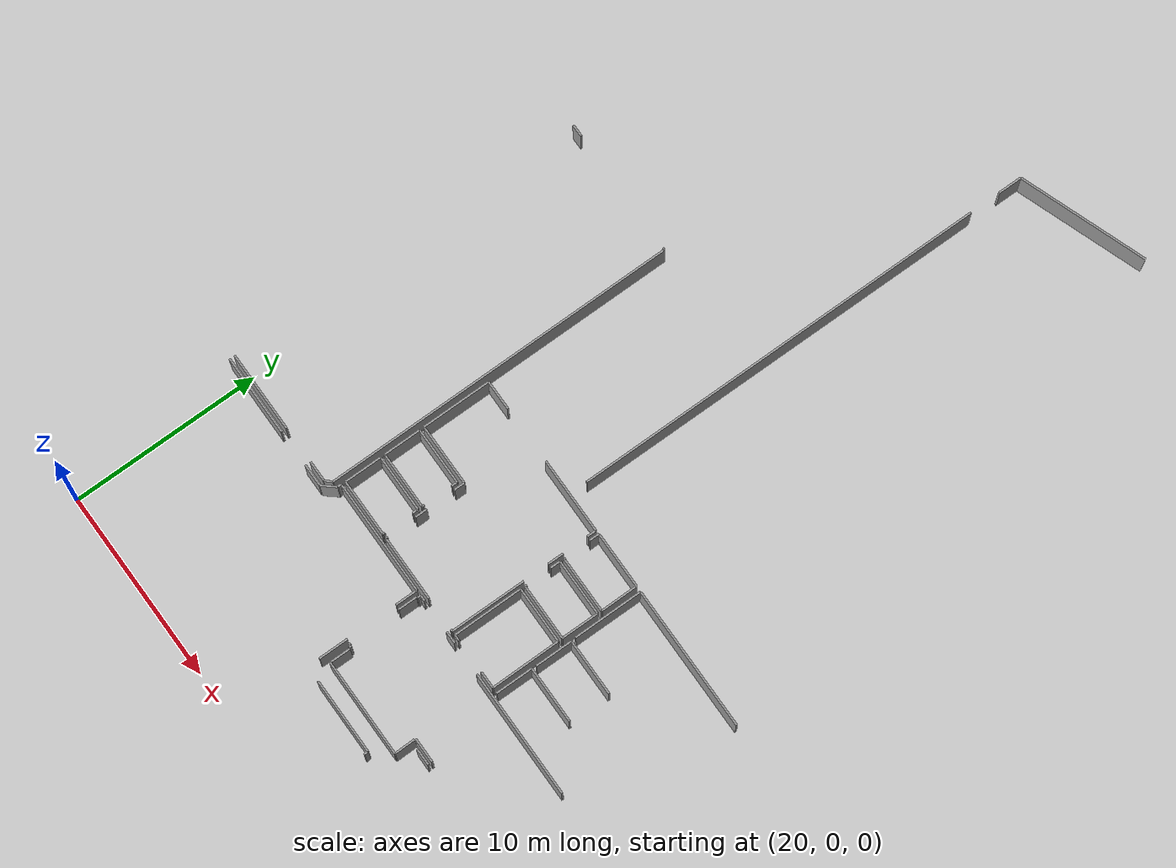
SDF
<sdf version="1.6">
 <world name="default">
  <model name="ground_plane">
   <static>1</static>
   <link name="link">
    <collision name="collision">
     <geometry><plane><normal>0 0 1</normal><size>100 100</size></plane></geometry>
     <surface><friction><ode><mu>100</mu><mu2>50</mu2></ode></friction></surface>
    </collision>
    <visual name="visual">
     <cast_shadows>0</cast_shadows>
     <geometry><plane><normal>0 0 1</normal><size>100 100</size></plane></geometry>
     <material>
      <script><uri>file://media/materials/scripts/gazebo.material</uri><name>Gazebo/Grey</name></script>
     </material>
    </visual>
   </link>
  </model>
  <model name="0510032218_A-40">
   <static>1</static>
   <link name="Wall_21">
    <collision name="Wall_21_Collision">
     <geometry><box><size>4.19420556596 0.1 2.5</size></box></geometry>
     <pose>2.09710278298 0 1.25 0 0 0</pose>
    </collision>
    <visual name="Wall_21_Visual">
     <pose>2.09710278298 0 1.25 0 0 0</pose>
     <geometry><box><size>4.19420556596 0.1 2.5</size></box></geometry>
     <material>
      <script><uri>file://media/materials/scripts/gazebo.material</uri><name>Gazebo/Grey</name></script>
      <ambient>1 1 1 1</ambient>
     </material>
    </visual>
    <pose>93.9283089519 -40.3395424111 0 0 0 0.0</pose>
   </link>
   <link name="Wall_22">
    <collision name="Wall_22_Collision">
     <geometry><box><size>1.15507885634 0.1 2.5</size></box></geometry>
     <pose>0.577539428172 0 1.25 0 0 0</pose>
    </collision>
    <visual name="Wall_22_Visual">
     <pose>0.577539428172 0 1.25 0 0 0</pose>
     <geometry><box><size>1.15507885634 0.1 2.5</size></box></geometry>
     <material>
      <script><uri>file://media/materials/scripts/gazebo.material</uri><name>Gazebo/Grey</name></script>
      <ambient>1 1 1 1</ambient>
     </material>
    </visual>
    <pose>100.037025989 -40.3395424111 0 0 0 0.0</pose>
   </link>
   <link name="Wall_23">
    <collision name="Wall_23_Collision">
     <geometry><box><size>0.819658962709 0.1 2.5</size></box></geometry>
     <pose>0.409829481354 0 1.25 0 0 0</pose>
    </collision>
    <visual name="Wall_23_Visual">
     <pose>0.409829481354 0 1.25 0 0 0</pose>
     <geometry><box><size>0.819658962709 0.1 2.5</size></box></geometry>
     <material>
      <script><uri>file://media/materials/scripts/gazebo.material</uri><name>Gazebo/Grey</name></script>
      <ambient>1 1 1 1</ambient>
     </material>
    </visual>
    <pose>101.192104846 -40.3395424111 0 0 0 0.86267395989</pose>
   </link>
   <link name="Wall_24">
    <collision name="Wall_24_Collision">
     <geometry><box><size>0.203090787929 0.1 2.5</size></box></geometry>
     <pose>0.101545393964 0 1.25 0 0 0</pose>
    </collision>
    <visual name="Wall_24_Visual">
     <pose>0.101545393964 0 1.25 0 0 0</pose>
     <geometry><box><size>0.203090787929 0.1 2.5</size></box></geometry>
     <material>
      <script><uri>file://media/materials/scripts/gazebo.material</uri><name>Gazebo/Grey</name></script>
      <ambient>1 1 1 1</ambient>
     </material>
    </visual>
    <pose>101.725218164 -39.7169422143 0 0 0 1.57079632679</pose>
   </link>
   <link name="Wall_25">
    <collision name="Wall_25_Collision">
     <geometry><box><size>6.0408085552 0.1 2.5</size></box></geometry>
     <pose>3.0204042776 0 1.25 0 0 0</pose>
    </collision>
    <visual name="Wall_25_Visual">
     <pose>3.0204042776 0 1.25 0 0 0</pose>
     <geometry><box><size>6.0408085552 0.1 2.5</size></box></geometry>
     <material>
      <script><uri>file://media/materials/scripts/gazebo.material</uri><name>Gazebo/Grey</name></script>
      <ambient>1 1 1 1</ambient>
     </material>
    </visual>
    <pose>101.725218164 -39.5138514264 0 0 0 0.0</pose>
   </link>
   <link name="Wall_26">
    <collision name="Wall_26_Collision">
     <geometry><box><size>1.1684066893 0.1 2.5</size></box></geometry>
     <pose>0.584203344651 0 1.25 0 0 0</pose>
    </collision>
    <visual name="Wall_26_Visual">
     <pose>0.584203344651 0 1.25 0 0 0</pose>
     <geometry><box><size>1.1684066893 0.1 2.5</size></box></geometry>
     <material>
      <script><uri>file://media/materials/scripts/gazebo.material</uri><name>Gazebo/Grey</name></script>
      <ambient>1 1 1 1</ambient>
     </material>
    </visual>
    <pose>107.766026719 -39.5138514264 0 0 0 -1.57079632679</pose>
   </link>
   <link name="Wall_27">
    <collision name="Wall_27_Collision">
     <geometry><box><size>1.55922952432 0.1 2.5</size></box></geometry>
     <pose>0.779614762162 0 1.25 0 0 0</pose>
    </collision>
    <visual name="Wall_27_Visual">
     <pose>0.779614762162 0 1.25 0 0 0</pose>
     <geometry><box><size>1.55922952432 0.1 2.5</size></box></geometry>
     <material>
      <script><uri>file://media/materials/scripts/gazebo.material</uri><name>Gazebo/Grey</name></script>
      <ambient>1 1 1 1</ambient>
     </material>
    </visual>
    <pose>107.766026719 -43.3983435408 0 0 0 -1.57079632679</pose>
   </link>
   <link name="Wall_58">
    <collision name="Wall_58_Collision">
     <geometry><box><size>0.425149207355 0.1 2.5</size></box></geometry>
     <pose>0.212574603678 0 1.25 0 0 0</pose>
    </collision>
    <visual name="Wall_58_Visual">
     <pose>0.212574603678 0 1.25 0 0 0</pose>
     <geometry><box><size>0.425149207355 0.1 2.5</size></box></geometry>
     <material>
      <script><uri>file://media/materials/scripts/gazebo.material</uri><name>Gazebo/Grey</name></script>
      <ambient>1 1 1 1</ambient>
     </material>
    </visual>
    <pose>101.404334719 -39.7554025323 0 0 0 -2.3285352311</pose>
   </link>
   <link name="Wall_59">
    <collision name="Wall_59_Collision">
     <geometry><box><size>1.0598800495 0.1 2.5</size></box></geometry>
     <pose>0.529940024752 0 1.25 0 0 0</pose>
    </collision>
    <visual name="Wall_59_Visual">
     <pose>0.529940024752 0 1.25 0 0 0</pose>
     <geometry><box><size>1.0598800495 0.1 2.5</size></box></geometry>
     <material>
      <script><uri>file://media/materials/scripts/gazebo.material</uri><name>Gazebo/Grey</name></script>
      <ambient>1 1 1 1</ambient>
     </material>
    </visual>
    <pose>101.112137848 -40.0642274617 0 0 0 3.14159265359</pose>
   </link>
   <link name="Wall_60">
    <collision name="Wall_60_Collision">
     <geometry><box><size>4.20918351157 0.1 2.5</size></box></geometry>
     <pose>2.10459175578 0 1.25 0 0 0</pose>
    </collision>
    <visual name="Wall_60_Visual">
     <pose>2.10459175578 0 1.25 0 0 0</pose>
     <geometry><box><size>4.20918351157 0.1 2.5</size></box></geometry>
     <material>
      <script><uri>file://media/materials/scripts/gazebo.material</uri><name>Gazebo/Grey</name></script>
      <ambient>1 1 1 1</ambient>
     </material>
    </visual>
    <pose>98.1280995145 -40.0642274617 0 0 0 3.14159265359</pose>
   </link>
   <link name="Wall_69">
    <collision name="Wall_69_Collision">
     <geometry><box><size>0.637451210611 0.1 2.5</size></box></geometry>
     <pose>0.318725605306 0 1.25 0 0 0</pose>
    </collision>
    <visual name="Wall_69_Visual">
     <pose>0.318725605306 0 1.25 0 0 0</pose>
     <geometry><box><size>0.637451210611 0.1 2.5</size></box></geometry>
     <material>
      <script><uri>file://media/materials/scripts/gazebo.material</uri><name>Gazebo/Grey</name></script>
      <ambient>1 1 1 1</ambient>
     </material>
    </visual>
    <pose>94.0869736299 -21.0168501888 0 0 0 0.0</pose>
   </link>
   <link name="Wall_70">
    <collision name="Wall_70_Collision">
     <geometry><box><size>0.111826865103 0.1 2.5</size></box></geometry>
     <pose>0.0559134325516 0 1.25 0 0 0</pose>
    </collision>
    <visual name="Wall_70_Visual">
     <pose>0.0559134325516 0 1.25 0 0 0</pose>
     <geometry><box><size>0.111826865103 0.1 2.5</size></box></geometry>
     <material>
      <script><uri>file://media/materials/scripts/gazebo.material</uri><name>Gazebo/Grey</name></script>
      <ambient>1 1 1 1</ambient>
     </material>
    </visual>
    <pose>101.249097198 -21.0168501888 0 0 0 0.0</pose>
   </link>
   <link name="Wall_71">
    <collision name="Wall_71_Collision">
     <geometry><box><size>18.738602627 0.1 2.5</size></box></geometry>
     <pose>9.36930131352 0 1.25 0 0 0</pose>
    </collision>
    <visual name="Wall_71_Visual">
     <pose>9.36930131352 0 1.25 0 0 0</pose>
     <geometry><box><size>18.738602627 0.1 2.5</size></box></geometry>
     <material>
      <script><uri>file://media/materials/scripts/gazebo.material</uri><name>Gazebo/Grey</name></script>
      <ambient>1 1 1 1</ambient>
     </material>
    </visual>
    <pose>101.360924063 -21.0168501888 0 0 0 -1.56847968155</pose>
   </link>
   <link name="Wall_73">
    <collision name="Wall_73_Collision">
     <geometry><box><size>1.28607241456 0.1 2.5</size></box></geometry>
     <pose>0.64303620728 0 1.25 0 0 0</pose>
    </collision>
    <visual name="Wall_73_Visual">
     <pose>0.64303620728 0 1.25 0 0 0</pose>
     <geometry><box><size>1.28607241456 0.1 2.5</size></box></geometry>
     <material>
      <script><uri>file://media/materials/scripts/gazebo.material</uri><name>Gazebo/Grey</name></script>
      <ambient>1 1 1 1</ambient>
     </material>
    </visual>
    <pose>114.628464443 -43.4868149653 0 0 0 3.14159265359</pose>
   </link>
   <link name="Wall_74">
    <collision name="Wall_74_Collision">
     <geometry><box><size>0.17008853489 0.1 2.5</size></box></geometry>
     <pose>0.0850442674452 0 1.25 0 0 0</pose>
    </collision>
    <visual name="Wall_74_Visual">
     <pose>0.0850442674452 0 1.25 0 0 0</pose>
     <geometry><box><size>0.17008853489 0.1 2.5</size></box></geometry>
     <material>
      <script><uri>file://media/materials/scripts/gazebo.material</uri><name>Gazebo/Grey</name></script>
      <ambient>1 1 1 1</ambient>
     </material>
    </visual>
    <pose>108.182997493 -43.4868149653 0 0 0 3.14159265359</pose>
   </link>
   <link name="Wall_75">
    <collision name="Wall_75_Collision">
     <geometry><box><size>0.096975851236 0.1 2.5</size></box></geometry>
     <pose>0.048487925618 0 1.25 0 0 0</pose>
    </collision>
    <visual name="Wall_75_Visual">
     <pose>0.048487925618 0 1.25 0 0 0</pose>
     <geometry><box><size>0.096975851236 0.1 2.5</size></box></geometry>
     <material>
      <script><uri>file://media/materials/scripts/gazebo.material</uri><name>Gazebo/Grey</name></script>
      <ambient>1 1 1 1</ambient>
     </material>
    </visual>
    <pose>108.012908958 -43.4868149653 0 0 0 1.57079632679</pose>
   </link>
   <link name="Wall_76">
    <collision name="Wall_76_Collision">
     <geometry><box><size>1.02332370768 0.1 2.5</size></box></geometry>
     <pose>0.511661853838 0 1.25 0 0 0</pose>
    </collision>
    <visual name="Wall_76_Visual">
     <pose>0.511661853838 0 1.25 0 0 0</pose>
     <geometry><box><size>1.02332370768 0.1 2.5</size></box></geometry>
     <material>
      <script><uri>file://media/materials/scripts/gazebo.material</uri><name>Gazebo/Grey</name></script>
      <ambient>1 1 1 1</ambient>
     </material>
    </visual>
    <pose>108.012908958 -40.7144987783 0 0 0 1.57079632679</pose>
   </link>
   <link name="Wall_77">
    <collision name="Wall_77_Collision">
     <geometry><box><size>0.0548345127408 0.1 2.5</size></box></geometry>
     <pose>0.0274172563704 0 1.25 0 0 0</pose>
    </collision>
    <visual name="Wall_77_Visual">
     <pose>0.0274172563704 0 1.25 0 0 0</pose>
     <geometry><box><size>0.0548345127408 0.1 2.5</size></box></geometry>
     <material>
      <script><uri>file://media/materials/scripts/gazebo.material</uri><name>Gazebo/Grey</name></script>
      <ambient>1 1 1 1</ambient>
     </material>
    </visual>
    <pose>108.012908958 -39.6911750706 0 0 0 0.0</pose>
   </link>
   <link name="Wall_78">
    <collision name="Wall_78_Collision">
     <geometry><box><size>0.18658966141 0.1 2.5</size></box></geometry>
     <pose>0.0932948307048 0 1.25 0 0 0</pose>
    </collision>
    <visual name="Wall_78_Visual">
     <pose>0.0932948307048 0 1.25 0 0 0</pose>
     <geometry><box><size>0.18658966141 0.1 2.5</size></box></geometry>
     <material>
      <script><uri>file://media/materials/scripts/gazebo.material</uri><name>Gazebo/Grey</name></script>
      <ambient>1 1 1 1</ambient>
     </material>
    </visual>
    <pose>108.067743471 -39.6911750706 0 0 0 1.57079632679</pose>
   </link>
   <link name="Wall_79">
    <collision name="Wall_79_Collision">
     <geometry><box><size>0.31275981341 0.1 2.5</size></box></geometry>
     <pose>0.156379906705 0 1.25 0 0 0</pose>
    </collision>
    <visual name="Wall_79_Visual">
     <pose>0.156379906705 0 1.25 0 0 0</pose>
     <geometry><box><size>0.31275981341 0.1 2.5</size></box></geometry>
     <material>
      <script><uri>file://media/materials/scripts/gazebo.material</uri><name>Gazebo/Grey</name></script>
      <ambient>1 1 1 1</ambient>
     </material>
    </visual>
    <pose>108.067743471 -39.5045854092 0 0 0 0.0</pose>
   </link>
   <link name="Wall_80">
    <collision name="Wall_80_Collision">
     <geometry><box><size>0.638720528036 0.1 2.5</size></box></geometry>
     <pose>0.319360264018 0 1.25 0 0 0</pose>
    </collision>
    <visual name="Wall_80_Visual">
     <pose>0.319360264018 0 1.25 0 0 0</pose>
     <geometry><box><size>0.638720528036 0.1 2.5</size></box></geometry>
     <material>
      <script><uri>file://media/materials/scripts/gazebo.material</uri><name>Gazebo/Grey</name></script>
      <ambient>1 1 1 1</ambient>
     </material>
    </visual>
    <pose>110.127591788 -39.5045854092 0 0 0 0.0</pose>
   </link>
   <link name="Wall_81">
    <collision name="Wall_81_Collision">
     <geometry><box><size>6.72992098499 0.1 2.5</size></box></geometry>
     <pose>3.3649604925 0 1.25 0 0 0</pose>
    </collision>
    <visual name="Wall_81_Visual">
     <pose>3.3649604925 0 1.25 0 0 0</pose>
     <geometry><box><size>6.72992098499 0.1 2.5</size></box></geometry>
     <material>
      <script><uri>file://media/materials/scripts/gazebo.material</uri><name>Gazebo/Grey</name></script>
      <ambient>1 1 1 1</ambient>
     </material>
    </visual>
    <pose>112.518224225 -39.5045854092 0 0 0 0.0</pose>
   </link>
   <link name="Wall_86">
    <collision name="Wall_86_Collision">
     <geometry><box><size>0.104337892298 0.1 2.5</size></box></geometry>
     <pose>0.0521689461492 0 1.25 0 0 0</pose>
    </collision>
    <visual name="Wall_86_Visual">
     <pose>0.0521689461492 0 1.25 0 0 0</pose>
     <geometry><box><size>0.104337892298 0.1 2.5</size></box></geometry>
     <material>
      <script><uri>file://media/materials/scripts/gazebo.material</uri><name>Gazebo/Grey</name></script>
      <ambient>1 1 1 1</ambient>
     </material>
    </visual>
    <pose>110.251857963 -39.2851204265 0 0 0 3.14159265359</pose>
   </link>
   <link name="Wall_87">
    <collision name="Wall_87_Collision">
     <geometry><box><size>3.44238885539 0.1 2.5</size></box></geometry>
     <pose>1.7211944277 0 1.25 0 0 0</pose>
    </collision>
    <visual name="Wall_87_Visual">
     <pose>1.7211944277 0 1.25 0 0 0</pose>
     <geometry><box><size>3.44238885539 0.1 2.5</size></box></geometry>
     <material>
      <script><uri>file://media/materials/scripts/gazebo.material</uri><name>Gazebo/Grey</name></script>
      <ambient>1 1 1 1</ambient>
     </material>
    </visual>
    <pose>108.393196459 -39.2851204265 0 0 0 3.14159265359</pose>
   </link>
   <link name="Wall_88">
    <collision name="Wall_88_Collision">
     <geometry><box><size>0.0987528956304 0.1 2.5</size></box></geometry>
     <pose>0.0493764478152 0 1.25 0 0 0</pose>
    </collision>
    <visual name="Wall_88_Visual">
     <pose>0.0493764478152 0 1.25 0 0 0</pose>
     <geometry><box><size>0.0987528956304 0.1 2.5</size></box></geometry>
     <material>
      <script><uri>file://media/materials/scripts/gazebo.material</uri><name>Gazebo/Grey</name></script>
      <ambient>1 1 1 1</ambient>
     </material>
    </visual>
    <pose>104.950807603 -39.2851204265 0 0 0 1.57079632679</pose>
   </link>
   <link name="Wall_89">
    <collision name="Wall_89_Collision">
     <geometry><box><size>0.647605750008 0.1 2.5</size></box></geometry>
     <pose>0.323802875004 0 1.25 0 0 0</pose>
    </collision>
    <visual name="Wall_89_Visual">
     <pose>0.323802875004 0 1.25 0 0 0</pose>
     <geometry><box><size>0.647605750008 0.1 2.5</size></box></geometry>
     <material>
      <script><uri>file://media/materials/scripts/gazebo.material</uri><name>Gazebo/Grey</name></script>
      <ambient>1 1 1 1</ambient>
     </material>
    </visual>
    <pose>104.950807603 -37.627899597 0 0 0 1.57079632679</pose>
   </link>
   <link name="Wall_90">
    <collision name="Wall_90_Collision">
     <geometry><box><size>0.559768984229 0.1 2.5</size></box></geometry>
     <pose>0.279884492114 0 1.25 0 0 0</pose>
    </collision>
    <visual name="Wall_90_Visual">
     <pose>0.279884492114 0 1.25 0 0 0</pose>
     <geometry><box><size>0.559768984229 0.1 2.5</size></box></geometry>
     <material>
      <script><uri>file://media/materials/scripts/gazebo.material</uri><name>Gazebo/Grey</name></script>
      <ambient>1 1 1 1</ambient>
     </material>
    </visual>
    <pose>104.950807603 -35.4383270396 0 0 0 1.57079632679</pose>
   </link>
   <link name="Wall_91">
    <collision name="Wall_91_Collision">
     <geometry><box><size>3.21568876337 0.1 2.5</size></box></geometry>
     <pose>1.60784438168 0 1.25 0 0 0</pose>
    </collision>
    <visual name="Wall_91_Visual">
     <pose>1.60784438168 0 1.25 0 0 0</pose>
     <geometry><box><size>3.21568876337 0.1 2.5</size></box></geometry>
     <material>
      <script><uri>file://media/materials/scripts/gazebo.material</uri><name>Gazebo/Grey</name></script>
      <ambient>1 1 1 1</ambient>
     </material>
    </visual>
    <pose>104.950807603 -34.8785580554 0 0 0 3.14159265359</pose>
   </link>
   <link name="Wall_92">
    <collision name="Wall_92_Collision">
     <geometry><box><size>3.638244534 0.1 2.5</size></box></geometry>
     <pose>1.819122267 0 1.25 0 0 0</pose>
    </collision>
    <visual name="Wall_92_Visual">
     <pose>1.819122267 0 1.25 0 0 0</pose>
     <geometry><box><size>3.638244534 0.1 2.5</size></box></geometry>
     <material>
      <script><uri>file://media/materials/scripts/gazebo.material</uri><name>Gazebo/Grey</name></script>
      <ambient>1 1 1 1</ambient>
     </material>
    </visual>
    <pose>101.73511884 -34.8785580554 0 0 0 1.57079632679</pose>
   </link>
   <link name="Wall_93">
    <collision name="Wall_93_Collision">
     <geometry><box><size>1.5528829372 0.1 2.5</size></box></geometry>
     <pose>0.7764414686 0 1.25 0 0 0</pose>
    </collision>
    <visual name="Wall_93_Visual">
     <pose>0.7764414686 0 1.25 0 0 0</pose>
     <geometry><box><size>1.5528829372 0.1 2.5</size></box></geometry>
     <material>
      <script><uri>file://media/materials/scripts/gazebo.material</uri><name>Gazebo/Grey</name></script>
      <ambient>1 1 1 1</ambient>
     </material>
    </visual>
    <pose>101.73511884 -31.2403135214 0 0 0 0.0</pose>
   </link>
   <link name="Wall_94">
    <collision name="Wall_94_Collision">
     <geometry><box><size>3.96407831689 0.1 2.5</size></box></geometry>
     <pose>1.98203915844 0 1.25 0 0 0</pose>
    </collision>
    <visual name="Wall_94_Visual">
     <pose>1.98203915844 0 1.25 0 0 0</pose>
     <geometry><box><size>3.96407831689 0.1 2.5</size></box></geometry>
     <material>
      <script><uri>file://media/materials/scripts/gazebo.material</uri><name>Gazebo/Grey</name></script>
      <ambient>1 1 1 1</ambient>
     </material>
    </visual>
    <pose>106.295268619 -31.2403135214 0 0 0 0.0</pose>
   </link>
   <link name="Wall_95">
    <collision name="Wall_95_Collision">
     <geometry><box><size>0.477898010345 0.1 2.5</size></box></geometry>
     <pose>0.238949005172 0 1.25 0 0 0</pose>
    </collision>
    <visual name="Wall_95_Visual">
     <pose>0.238949005172 0 1.25 0 0 0</pose>
     <geometry><box><size>0.477898010345 0.1 2.5</size></box></geometry>
     <material>
      <script><uri>file://media/materials/scripts/gazebo.material</uri><name>Gazebo/Grey</name></script>
      <ambient>1 1 1 1</ambient>
     </material>
    </visual>
    <pose>110.259346936 -31.2403135214 0 0 0 -1.57079632679</pose>
   </link>
   <link name="Wall_96">
    <collision name="Wall_96_Collision">
     <geometry><box><size>0.846507790436 0.1 2.5</size></box></geometry>
     <pose>0.423253895218 0 1.25 0 0 0</pose>
    </collision>
    <visual name="Wall_96_Visual">
     <pose>0.423253895218 0 1.25 0 0 0</pose>
     <geometry><box><size>0.846507790436 0.1 2.5</size></box></geometry>
     <material>
      <script><uri>file://media/materials/scripts/gazebo.material</uri><name>Gazebo/Grey</name></script>
      <ambient>1 1 1 1</ambient>
     </material>
    </visual>
    <pose>110.259346936 -33.0791736744 0 0 0 -1.57079632679</pose>
   </link>
   <link name="Wall_97">
    <collision name="Wall_97_Collision">
     <geometry><box><size>3.98667920106 0.1 2.5</size></box></geometry>
     <pose>1.99333960053 0 1.25 0 0 0</pose>
    </collision>
    <visual name="Wall_97_Visual">
     <pose>1.99333960053 0 1.25 0 0 0</pose>
     <geometry><box><size>3.98667920106 0.1 2.5</size></box></geometry>
     <material>
      <script><uri>file://media/materials/scripts/gazebo.material</uri><name>Gazebo/Grey</name></script>
      <ambient>1 1 1 1</ambient>
     </material>
    </visual>
    <pose>110.259346936 -35.2984482594 0 0 0 -1.57267482688</pose>
   </link>
   <link name="Wall_98">
    <collision name="Wall_98_Collision">
     <geometry><box><size>2.98086503982 0.1 2.5</size></box></geometry>
     <pose>1.49043251991 0 1.25 0 0 0</pose>
    </collision>
    <visual name="Wall_98_Visual">
     <pose>1.49043251991 0 1.25 0 0 0</pose>
     <geometry><box><size>2.98086503982 0.1 2.5</size></box></geometry>
     <material>
      <script><uri>file://media/materials/scripts/gazebo.material</uri><name>Gazebo/Grey</name></script>
      <ambient>1 1 1 1</ambient>
     </material>
    </visual>
    <pose>113.448380034 -33.1828769079 0 0 0 3.14159265359</pose>
   </link>
   <link name="Wall_99">
    <collision name="Wall_99_Collision">
     <geometry><box><size>0.0746358645638 0.1 2.5</size></box></geometry>
     <pose>0.0373179322819 0 1.25 0 0 0</pose>
    </collision>
    <visual name="Wall_99_Visual">
     <pose>0.0373179322819 0 1.25 0 0 0</pose>
     <geometry><box><size>0.0746358645638 0.1 2.5</size></box></geometry>
     <material>
      <script><uri>file://media/materials/scripts/gazebo.material</uri><name>Gazebo/Grey</name></script>
      <ambient>1 1 1 1</ambient>
     </material>
    </visual>
    <pose>110.467514994 -33.1828769079 0 0 0 1.57079632679</pose>
   </link>
   <link name="Wall_100">
    <collision name="Wall_100_Collision">
     <geometry><box><size>0.529813093009 0.1 2.5</size></box></geometry>
     <pose>0.264906546505 0 1.25 0 0 0</pose>
    </collision>
    <visual name="Wall_100_Visual">
     <pose>0.264906546505 0 1.25 0 0 0</pose>
     <geometry><box><size>0.529813093009 0.1 2.5</size></box></geometry>
     <material>
      <script><uri>file://media/materials/scripts/gazebo.material</uri><name>Gazebo/Grey</name></script>
      <ambient>1 1 1 1</ambient>
     </material>
    </visual>
    <pose>110.467514994 -31.7443594707 0 0 0 1.57079632679</pose>
   </link>
   <link name="Wall_101">
    <collision name="Wall_101_Collision">
     <geometry><box><size>2.969441183 0.1 2.5</size></box></geometry>
     <pose>1.4847205915 0 1.25 0 0 0</pose>
    </collision>
    <visual name="Wall_101_Visual">
     <pose>1.4847205915 0 1.25 0 0 0</pose>
     <geometry><box><size>2.969441183 0.1 2.5</size></box></geometry>
     <material>
      <script><uri>file://media/materials/scripts/gazebo.material</uri><name>Gazebo/Grey</name></script>
      <ambient>1 1 1 1</ambient>
     </material>
    </visual>
    <pose>110.467514994 -31.2145463777 0 0 0 0.0</pose>
   </link>
   <link name="Wall_102">
    <collision name="Wall_102_Collision">
     <geometry><box><size>1.96836368104 0.1 2.5</size></box></geometry>
     <pose>0.984181840521 0 1.25 0 0 0</pose>
    </collision>
    <visual name="Wall_102_Visual">
     <pose>0.984181840521 0 1.25 0 0 0</pose>
     <geometry><box><size>1.96836368104 0.1 2.5</size></box></geometry>
     <material>
      <script><uri>file://media/materials/scripts/gazebo.material</uri><name>Gazebo/Grey</name></script>
      <ambient>1 1 1 1</ambient>
     </material>
    </visual>
    <pose>113.436956177 -31.2145463777 0 0 0 -1.56499256143</pose>
   </link>
   <link name="Wall_103">
    <collision name="Wall_103_Collision">
     <geometry><box><size>2.95979437058 0.1 2.5</size></box></geometry>
     <pose>1.47989718529 0 1.25 0 0 0</pose>
    </collision>
    <visual name="Wall_103_Visual">
     <pose>1.47989718529 0 1.25 0 0 0</pose>
     <geometry><box><size>2.95979437058 0.1 2.5</size></box></geometry>
     <material>
      <script><uri>file://media/materials/scripts/gazebo.material</uri><name>Gazebo/Grey</name></script>
      <ambient>1 1 1 1</ambient>
     </material>
    </visual>
    <pose>113.429467204 -35.3790499159 0 0 0 3.14159265359</pose>
   </link>
   <link name="Wall_104">
    <collision name="Wall_104_Collision">
     <geometry><box><size>0.101037666995 0.1 2.5</size></box></geometry>
     <pose>0.0505188334973 0 1.25 0 0 0</pose>
    </collision>
    <visual name="Wall_104_Visual">
     <pose>0.0505188334973 0 1.25 0 0 0</pose>
     <geometry><box><size>0.101037666995 0.1 2.5</size></box></geometry>
     <material>
      <script><uri>file://media/materials/scripts/gazebo.material</uri><name>Gazebo/Grey</name></script>
      <ambient>1 1 1 1</ambient>
     </material>
    </visual>
    <pose>110.469672833 -35.3790499159 0 0 0 1.57079632679</pose>
   </link>
   <link name="Wall_105">
    <collision name="Wall_105_Collision">
     <geometry><box><size>0.537048202329 0.1 2.5</size></box></geometry>
     <pose>0.268524101165 0 1.25 0 0 0</pose>
    </collision>
    <visual name="Wall_105_Visual">
     <pose>0.268524101165 0 1.25 0 0 0</pose>
     <geometry><box><size>0.537048202329 0.1 2.5</size></box></geometry>
     <material>
      <script><uri>file://media/materials/scripts/gazebo.material</uri><name>Gazebo/Grey</name></script>
      <ambient>1 1 1 1</ambient>
     </material>
    </visual>
    <pose>110.469672833 -33.943324977 0 0 0 1.57079632679</pose>
   </link>
   <link name="Wall_106">
    <collision name="Wall_106_Collision">
     <geometry><box><size>2.96499857202 0.1 2.5</size></box></geometry>
     <pose>1.48249928601 0 1.25 0 0 0</pose>
    </collision>
    <visual name="Wall_106_Visual">
     <pose>1.48249928601 0 1.25 0 0 0</pose>
     <geometry><box><size>2.96499857202 0.1 2.5</size></box></geometry>
     <material>
      <script><uri>file://media/materials/scripts/gazebo.material</uri><name>Gazebo/Grey</name></script>
      <ambient>1 1 1 1</ambient>
     </material>
    </visual>
    <pose>110.469672833 -33.4062767747 0 0 0 0.0</pose>
   </link>
   <link name="Wall_107">
    <collision name="Wall_107_Collision">
     <geometry><box><size>1.97278000561 0.1 2.5</size></box></geometry>
     <pose>0.986390002804 0 1.25 0 0 0</pose>
    </collision>
    <visual name="Wall_107_Visual">
     <pose>0.986390002804 0 1.25 0 0 0</pose>
     <geometry><box><size>1.97278000561 0.1 2.5</size></box></geometry>
     <material>
      <script><uri>file://media/materials/scripts/gazebo.material</uri><name>Gazebo/Grey</name></script>
      <ambient>1 1 1 1</ambient>
     </material>
    </visual>
    <pose>113.434671405 -33.4062767747 0 0 0 -1.5734343338</pose>
   </link>
   <link name="Wall_108">
    <collision name="Wall_108_Collision">
     <geometry><box><size>2.98492685558 0.1 2.5</size></box></geometry>
     <pose>1.49246342779 0 1.25 0 0 0</pose>
    </collision>
    <visual name="Wall_108_Visual">
     <pose>1.49246342779 0 1.25 0 0 0</pose>
     <geometry><box><size>2.98492685558 0.1 2.5</size></box></geometry>
     <material>
      <script><uri>file://media/materials/scripts/gazebo.material</uri><name>Gazebo/Grey</name></script>
      <ambient>1 1 1 1</ambient>
     </material>
    </visual>
    <pose>104.72690001 -37.089201282 0 0 0 3.14159265359</pose>
   </link>
   <link name="Wall_109">
    <collision name="Wall_109_Collision">
     <geometry><box><size>1.96261860185 0.1 2.5</size></box></geometry>
     <pose>0.981309300923 0 1.25 0 0 0</pose>
    </collision>
    <visual name="Wall_109_Visual">
     <pose>0.981309300923 0 1.25 0 0 0</pose>
     <geometry><box><size>1.96261860185 0.1 2.5</size></box></geometry>
     <material>
      <script><uri>file://media/materials/scripts/gazebo.material</uri><name>Gazebo/Grey</name></script>
      <ambient>1 1 1 1</ambient>
     </material>
    </visual>
    <pose>101.741973154 -37.089201282 0 0 0 1.57079632679</pose>
   </link>
   <link name="Wall_110">
    <collision name="Wall_110_Collision">
     <geometry><box><size>2.98518071907 0.1 2.5</size></box></geometry>
     <pose>1.49259035953 0 1.25 0 0 0</pose>
    </collision>
    <visual name="Wall_110_Visual">
     <pose>1.49259035953 0 1.25 0 0 0</pose>
     <geometry><box><size>2.98518071907 0.1 2.5</size></box></geometry>
     <material>
      <script><uri>file://media/materials/scripts/gazebo.material</uri><name>Gazebo/Grey</name></script>
      <ambient>1 1 1 1</ambient>
     </material>
    </visual>
    <pose>101.741973154 -35.1265826802 0 0 0 0.0</pose>
   </link>
   <link name="Wall_111">
    <collision name="Wall_111_Collision">
     <geometry><box><size>0.305270840605 0.1 2.5</size></box></geometry>
     <pose>0.152635420303 0 1.25 0 0 0</pose>
    </collision>
    <visual name="Wall_111_Visual">
     <pose>0.152635420303 0 1.25 0 0 0</pose>
     <geometry><box><size>0.305270840605 0.1 2.5</size></box></geometry>
     <material>
      <script><uri>file://media/materials/scripts/gazebo.material</uri><name>Gazebo/Grey</name></script>
      <ambient>1 1 1 1</ambient>
     </material>
    </visual>
    <pose>104.727153873 -35.1265826802 0 0 0 -1.57079632679</pose>
   </link>
   <link name="Wall_112">
    <collision name="Wall_112_Collision">
     <geometry><box><size>0.121347011335 0.1 2.5</size></box></geometry>
     <pose>0.0606735056674 0 1.25 0 0 0</pose>
    </collision>
    <visual name="Wall_112_Visual">
     <pose>0.0606735056674 0 1.25 0 0 0</pose>
     <geometry><box><size>0.121347011335 0.1 2.5</size></box></geometry>
     <material>
      <script><uri>file://media/materials/scripts/gazebo.material</uri><name>Gazebo/Grey</name></script>
      <ambient>1 1 1 1</ambient>
     </material>
    </visual>
    <pose>104.727153873 -36.9678545362 0 0 0 -1.57288837395</pose>
   </link>
   <link name="Wall_113">
    <collision name="Wall_113_Collision">
     <geometry><box><size>2.99178116968 0.1 2.5</size></box></geometry>
     <pose>1.49589058484 0 1.25 0 0 0</pose>
    </collision>
    <visual name="Wall_113_Visual">
     <pose>1.49589058484 0 1.25 0 0 0</pose>
     <geometry><box><size>2.99178116968 0.1 2.5</size></box></geometry>
     <material>
      <script><uri>file://media/materials/scripts/gazebo.material</uri><name>Gazebo/Grey</name></script>
      <ambient>1 1 1 1</ambient>
     </material>
    </visual>
    <pose>104.735531368 -39.2866436074 0 0 0 3.14159265359</pose>
   </link>
   <link name="Wall_114">
    <collision name="Wall_114_Collision">
     <geometry><box><size>1.96985371117 0.1 2.5</size></box></geometry>
     <pose>0.984926855583 0 1.25 0 0 0</pose>
    </collision>
    <visual name="Wall_114_Visual">
     <pose>0.984926855583 0 1.25 0 0 0</pose>
     <geometry><box><size>1.96985371117 0.1 2.5</size></box></geometry>
     <material>
      <script><uri>file://media/materials/scripts/gazebo.material</uri><name>Gazebo/Grey</name></script>
      <ambient>1 1 1 1</ambient>
     </material>
    </visual>
    <pose>101.743750198 -39.2866436074 0 0 0 1.57079632679</pose>
   </link>
   <link name="Wall_115">
    <collision name="Wall_115_Collision">
     <geometry><box><size>2.9736299305 0.1 2.5</size></box></geometry>
     <pose>1.48681496525 0 1.25 0 0 0</pose>
    </collision>
    <visual name="Wall_115_Visual">
     <pose>1.48681496525 0 1.25 0 0 0</pose>
     <geometry><box><size>2.9736299305 0.1 2.5</size></box></geometry>
     <material>
      <script><uri>file://media/materials/scripts/gazebo.material</uri><name>Gazebo/Grey</name></script>
      <ambient>1 1 1 1</ambient>
     </material>
    </visual>
    <pose>101.743750198 -37.3167898962 0 0 0 0.0</pose>
   </link>
   <link name="Wall_116">
    <collision name="Wall_116_Collision">
     <geometry><box><size>0.301335956589 0.1 2.5</size></box></geometry>
     <pose>0.150667978295 0 1.25 0 0 0</pose>
    </collision>
    <visual name="Wall_116_Visual">
     <pose>0.150667978295 0 1.25 0 0 0</pose>
     <geometry><box><size>0.301335956589 0.1 2.5</size></box></geometry>
     <material>
      <script><uri>file://media/materials/scripts/gazebo.material</uri><name>Gazebo/Grey</name></script>
      <ambient>1 1 1 1</ambient>
     </material>
    </visual>
    <pose>104.717380129 -37.3167898962 0 0 0 -1.57079632679</pose>
   </link>
   <link name="Wall_117">
    <collision name="Wall_117_Collision">
     <geometry><box><size>0.116298433983 0.1 2.5</size></box></geometry>
     <pose>0.0581492169917 0 1.25 0 0 0</pose>
    </collision>
    <visual name="Wall_117_Visual">
     <pose>0.0581492169917 0 1.25 0 0 0</pose>
     <geometry><box><size>0.116298433983 0.1 2.5</size></box></geometry>
     <material>
      <script><uri>file://media/materials/scripts/gazebo.material</uri><name>Gazebo/Grey</name></script>
      <ambient>1 1 1 1</ambient>
     </material>
    </visual>
    <pose>104.717380129 -39.1717703805 0 0 0 -1.4140809682</pose>
   </link>
   <link name="Wall_118">
    <collision name="Wall_118_Collision">
     <geometry><box><size>0.907181163329 0.1 2.5</size></box></geometry>
     <pose>0.453590581665 0 1.25 0 0 0</pose>
    </collision>
    <visual name="Wall_118_Visual">
     <pose>0.453590581665 0 1.25 0 0 0</pose>
     <geometry><box><size>0.907181163329 0.1 2.5</size></box></geometry>
     <material>
      <script><uri>file://media/materials/scripts/gazebo.material</uri><name>Gazebo/Grey</name></script>
      <ambient>1 1 1 1</ambient>
     </material>
    </visual>
    <pose>113.458788437 -39.2847396313 0 0 0 3.14159265359</pose>
   </link>
   <link name="Wall_119">
    <collision name="Wall_119_Collision">
     <geometry><box><size>0.304763113636 0.1 2.5</size></box></geometry>
     <pose>0.152381556818 0 1.25 0 0 0</pose>
    </collision>
    <visual name="Wall_119_Visual">
     <pose>0.152381556818 0 1.25 0 0 0</pose>
     <geometry><box><size>0.304763113636 0.1 2.5</size></box></geometry>
     <material>
      <script><uri>file://media/materials/scripts/gazebo.material</uri><name>Gazebo/Grey</name></script>
      <ambient>1 1 1 1</ambient>
     </material>
    </visual>
    <pose>110.773547425 -39.2847396313 0 0 0 3.14159265359</pose>
   </link>
   <link name="Wall_120">
    <collision name="Wall_120_Collision">
     <geometry><box><size>3.6744200806 0.1 2.5</size></box></geometry>
     <pose>1.8372100403 0 1.25 0 0 0</pose>
    </collision>
    <visual name="Wall_120_Visual">
     <pose>1.8372100403 0 1.25 0 0 0</pose>
     <geometry><box><size>3.6744200806 0.1 2.5</size></box></geometry>
     <material>
      <script><uri>file://media/materials/scripts/gazebo.material</uri><name>Gazebo/Grey</name></script>
      <ambient>1 1 1 1</ambient>
     </material>
    </visual>
    <pose>110.468784311 -39.2847396313 0 0 0 1.57079632679</pose>
   </link>
   <link name="Wall_121">
    <collision name="Wall_121_Collision">
     <geometry><box><size>2.97223368134 0.1 2.5</size></box></geometry>
     <pose>1.48611684067 0 1.25 0 0 0</pose>
    </collision>
    <visual name="Wall_121_Visual">
     <pose>1.48611684067 0 1.25 0 0 0</pose>
     <geometry><box><size>2.97223368134 0.1 2.5</size></box></geometry>
     <material>
      <script><uri>file://media/materials/scripts/gazebo.material</uri><name>Gazebo/Grey</name></script>
      <ambient>1 1 1 1</ambient>
     </material>
    </visual>
    <pose>110.468784311 -35.6103195507 0 0 0 0.0</pose>
   </link>
   <link name="Wall_122">
    <collision name="Wall_122_Collision">
     <geometry><box><size>3.67446305158 0.1 2.5</size></box></geometry>
     <pose>1.83723152579 0 1.25 0 0 0</pose>
    </collision>
    <visual name="Wall_122_Visual">
     <pose>1.83723152579 0 1.25 0 0 0</pose>
     <geometry><box><size>3.67446305158 0.1 2.5</size></box></geometry>
     <material>
      <script><uri>file://media/materials/scripts/gazebo.material</uri><name>Gazebo/Grey</name></script>
      <ambient>1 1 1 1</ambient>
     </material>
    </visual>
    <pose>113.441017993 -35.6103195507 0 0 0 -1.56596010638</pose>
   </link>
   <link name="Wall_129">
    <collision name="Wall_129_Collision">
     <geometry><box><size>3.66109224764 0.1 2.5</size></box></geometry>
     <pose>1.83054612382 0 1.25 0 0 0</pose>
    </collision>
    <visual name="Wall_129_Visual">
     <pose>1.83054612382 0 1.25 0 0 0</pose>
     <geometry><box><size>3.66109224764 0.1 2.5</size></box></geometry>
     <material>
      <script><uri>file://media/materials/scripts/gazebo.material</uri><name>Gazebo/Grey</name></script>
      <ambient>1 1 1 1</ambient>
     </material>
    </visual>
    <pose>113.756316441 -34.8813505537 0 0 0 1.57079632679</pose>
   </link>
   <link name="Wall_130">
    <collision name="Wall_130_Collision">
     <geometry><box><size>7.54939231428 0.1 2.5</size></box></geometry>
     <pose>3.77469615714 0 1.25 0 0 0</pose>
    </collision>
    <visual name="Wall_130_Visual">
     <pose>3.77469615714 0 1.25 0 0 0</pose>
     <geometry><box><size>7.54939231428 0.1 2.5</size></box></geometry>
     <material>
      <script><uri>file://media/materials/scripts/gazebo.material</uri><name>Gazebo/Grey</name></script>
      <ambient>1 1 1 1</ambient>
     </material>
    </visual>
    <pose>113.756316441 -31.2202583061 0 0 0 0.0</pose>
   </link>
   <link name="Wall_139">
    <collision name="Wall_139_Collision">
     <geometry><box><size>1.9726462095 0.1 2.5</size></box></geometry>
     <pose>0.98632310475 0 1.25 0 0 0</pose>
    </collision>
    <visual name="Wall_139_Visual">
     <pose>0.98632310475 0 1.25 0 0 0</pose>
     <geometry><box><size>1.9726462095 0.1 2.5</size></box></geometry>
     <material>
      <script><uri>file://media/materials/scripts/gazebo.material</uri><name>Gazebo/Grey</name></script>
      <ambient>1 1 1 1</ambient>
     </material>
    </visual>
    <pose>113.782845175 -37.089201282 0 0 0 1.57079632679</pose>
   </link>
   <link name="Wall_140">
    <collision name="Wall_140_Collision">
     <geometry><box><size>2.95712880399 0.1 2.5</size></box></geometry>
     <pose>1.47856440199 0 1.25 0 0 0</pose>
    </collision>
    <visual name="Wall_140_Visual">
     <pose>1.47856440199 0 1.25 0 0 0</pose>
     <geometry><box><size>2.95712880399 0.1 2.5</size></box></geometry>
     <material>
      <script><uri>file://media/materials/scripts/gazebo.material</uri><name>Gazebo/Grey</name></script>
      <ambient>1 1 1 1</ambient>
     </material>
    </visual>
    <pose>113.782845175 -35.1165550725 0 0 0 0.0</pose>
   </link>
   <link name="Wall_144">
    <collision name="Wall_144_Collision">
     <geometry><box><size>1.97493098087 0.1 2.5</size></box></geometry>
     <pose>0.987465490433 0 1.25 0 0 0</pose>
    </collision>
    <visual name="Wall_144_Visual">
     <pose>0.987465490433 0 1.25 0 0 0</pose>
     <geometry><box><size>1.97493098087 0.1 2.5</size></box></geometry>
     <material>
      <script><uri>file://media/materials/scripts/gazebo.material</uri><name>Gazebo/Grey</name></script>
      <ambient>1 1 1 1</ambient>
     </material>
    </visual>
    <pose>113.75847428 -39.2905784914 0 0 0 1.57079632679</pose>
   </link>
   <link name="Wall_145">
    <collision name="Wall_145_Collision">
     <geometry><box><size>2.98911560308 0.1 2.5</size></box></geometry>
     <pose>1.49455780154 0 1.25 0 0 0</pose>
    </collision>
    <visual name="Wall_145_Visual">
     <pose>1.49455780154 0 1.25 0 0 0</pose>
     <geometry><box><size>2.98911560308 0.1 2.5</size></box></geometry>
     <material>
      <script><uri>file://media/materials/scripts/gazebo.material</uri><name>Gazebo/Grey</name></script>
      <ambient>1 1 1 1</ambient>
     </material>
    </visual>
    <pose>113.75847428 -37.3156475106 0 0 0 0.0</pose>
   </link>
   <link name="Wall_153">
    <collision name="Wall_153_Collision">
     <geometry><box><size>5.14022784248 0.1 2.5</size></box></geometry>
     <pose>2.57011392124 0 1.25 0 0 0</pose>
    </collision>
    <visual name="Wall_153_Visual">
     <pose>2.57011392124 0 1.25 0 0 0</pose>
     <geometry><box><size>5.14022784248 0.1 2.5</size></box></geometry>
     <material>
      <script><uri>file://media/materials/scripts/gazebo.material</uri><name>Gazebo/Grey</name></script>
      <ambient>1 1 1 1</ambient>
     </material>
    </visual>
    <pose>113.341122711 -44.6495097261 0 0 0 3.14159265359</pose>
   </link>
   <link name="Wall_154">
    <collision name="Wall_154_Collision">
     <geometry><box><size>1.09580173262 0.1 2.5</size></box></geometry>
     <pose>0.547900866309 0 1.25 0 0 0</pose>
    </collision>
    <visual name="Wall_154_Visual">
     <pose>0.547900866309 0 1.25 0 0 0</pose>
     <geometry><box><size>1.09580173262 0.1 2.5</size></box></geometry>
     <material>
      <script><uri>file://media/materials/scripts/gazebo.material</uri><name>Gazebo/Grey</name></script>
      <ambient>1 1 1 1</ambient>
     </material>
    </visual>
    <pose>108.200894869 -44.6495097261 0 0 0 1.57079632679</pose>
   </link>
   <link name="Wall_155">
    <collision name="Wall_155_Collision">
     <geometry><box><size>1.09590758973 0.1 2.5</size></box></geometry>
     <pose>0.547953794863 0 1.25 0 0 0</pose>
    </collision>
    <visual name="Wall_155_Visual">
     <pose>0.547953794863 0 1.25 0 0 0</pose>
     <geometry><box><size>1.09590758973 0.1 2.5</size></box></geometry>
     <material>
      <script><uri>file://media/materials/scripts/gazebo.material</uri><name>Gazebo/Grey</name></script>
      <ambient>1 1 1 1</ambient>
     </material>
    </visual>
    <pose>113.325890902 -43.5537079935 0 0 0 -1.55689707134</pose>
   </link>
   <link name="Wall_158">
    <collision name="Wall_158_Collision">
     <geometry><box><size>0.890553105068 0.1 2.5</size></box></geometry>
     <pose>0.445276552534 0 1.25 0 0 0</pose>
    </collision>
    <visual name="Wall_158_Visual">
     <pose>0.445276552534 0 1.25 0 0 0</pose>
     <geometry><box><size>0.890553105068 0.1 2.5</size></box></geometry>
     <material>
      <script><uri>file://media/materials/scripts/gazebo.material</uri><name>Gazebo/Grey</name></script>
      <ambient>1 1 1 1</ambient>
     </material>
    </visual>
    <pose>113.745527243 -43.7017104052 0 0 0 0.0</pose>
   </link>
   <link name="Wall_175">
    <collision name="Wall_175_Collision">
     <geometry><box><size>3.96598229302 0.1 2.5</size></box></geometry>
     <pose>1.98299114651 0 1.25 0 0 0</pose>
    </collision>
    <visual name="Wall_175_Visual">
     <pose>1.98299114651 0 1.25 0 0 0</pose>
     <geometry><box><size>3.96598229302 0.1 2.5</size></box></geometry>
     <material>
      <script><uri>file://media/materials/scripts/gazebo.material</uri><name>Gazebo/Grey</name></script>
      <ambient>1 1 1 1</ambient>
     </material>
    </visual>
    <pose>108.574581919 -45.5937549583 0 0 0 0.0</pose>
   </link>
   <link name="Wall_176">
    <collision name="Wall_176_Collision">
     <geometry><box><size>0.222948225538 0.1 2.5</size></box></geometry>
     <pose>0.111474112769 0 1.25 0 0 0</pose>
    </collision>
    <visual name="Wall_176_Visual">
     <pose>0.111474112769 0 1.25 0 0 0</pose>
     <geometry><box><size>0.222948225538 0.1 2.5</size></box></geometry>
     <material>
      <script><uri>file://media/materials/scripts/gazebo.material</uri><name>Gazebo/Grey</name></script>
      <ambient>1 1 1 1</ambient>
     </material>
    </visual>
    <pose>112.540564212 -45.5937549583 0 0 0 -1.4727138955</pose>
   </link>
   <link name="Wall_217">
    <collision name="Wall_217_Collision">
     <geometry><box><size>21.8452067401 0.1 2.5</size></box></geometry>
     <pose>10.92260337 0 1.25 0 0 0</pose>
    </collision>
    <visual name="Wall_217_Visual">
     <pose>10.92260337 0 1.25 0 0 0</pose>
     <geometry><box><size>21.8452067401 0.1 2.5</size></box></geometry>
     <material>
      <script><uri>file://media/materials/scripts/gazebo.material</uri><name>Gazebo/Grey</name></script>
      <ambient>1 1 1 1</ambient>
     </material>
    </visual>
    <pose>108.170177387 -30.2685241012 0 0 0 1.57079632679</pose>
   </link>
   <link name="Wall_218">
    <collision name="Wall_218_Collision">
     <geometry><box><size>1.24724399454 0.1 2.5</size></box></geometry>
     <pose>0.623621997271 0 1.25 0 0 0</pose>
    </collision>
    <visual name="Wall_218_Visual">
     <pose>0.623621997271 0 1.25 0 0 0</pose>
     <geometry><box><size>1.24724399454 0.1 2.5</size></box></geometry>
     <material>
      <script><uri>file://media/materials/scripts/gazebo.material</uri><name>Gazebo/Grey</name></script>
      <ambient>1 1 1 1</ambient>
     </material>
    </visual>
    <pose>108.170177387 -6.81181734522 0 0 0 1.57079632679</pose>
   </link>
   <link name="Wall_219">
    <collision name="Wall_219_Collision">
     <geometry><box><size>6.91586344845 0.1 2.5</size></box></geometry>
     <pose>3.45793172422 0 1.25 0 0 0</pose>
    </collision>
    <visual name="Wall_219_Visual">
     <pose>3.45793172422 0 1.25 0 0 0</pose>
     <geometry><box><size>6.91586344845 0.1 2.5</size></box></geometry>
     <material>
      <script><uri>file://media/materials/scripts/gazebo.material</uri><name>Gazebo/Grey</name></script>
      <ambient>1 1 1 1</ambient>
     </material>
    </visual>
    <pose>108.170177387 -5.56457335068 0 0 0 0.358760359203</pose>
   </link>
   <pose>-74.8 49.7517929109 0 0 0 0</pose>
  </model>
 </world>
</sdf>
